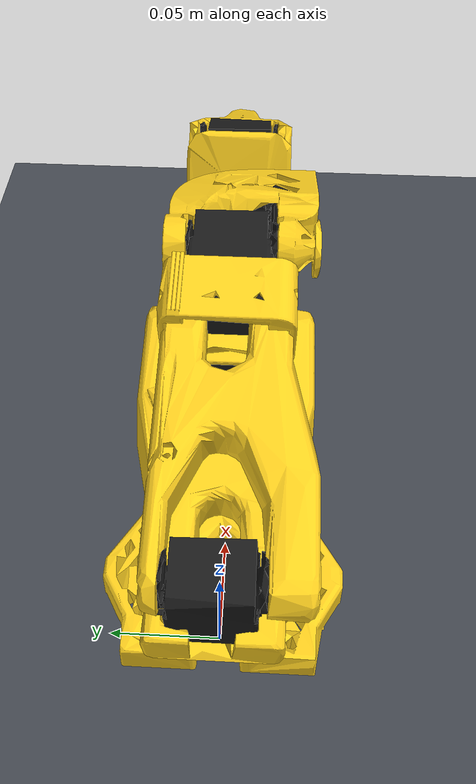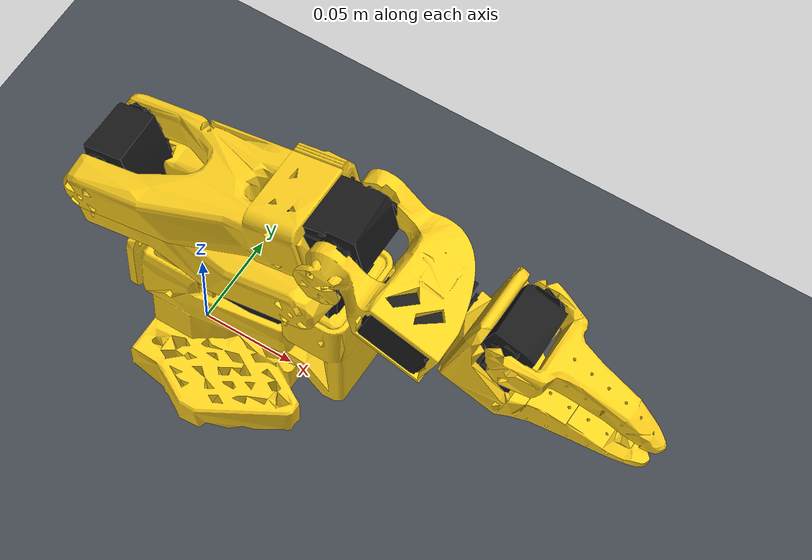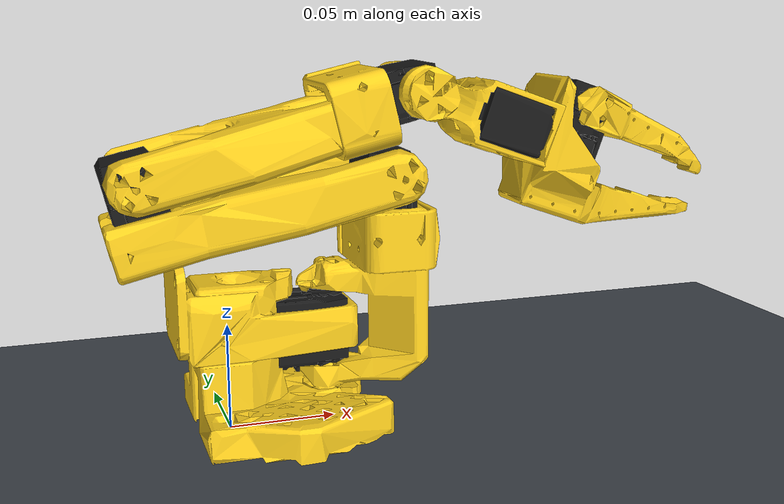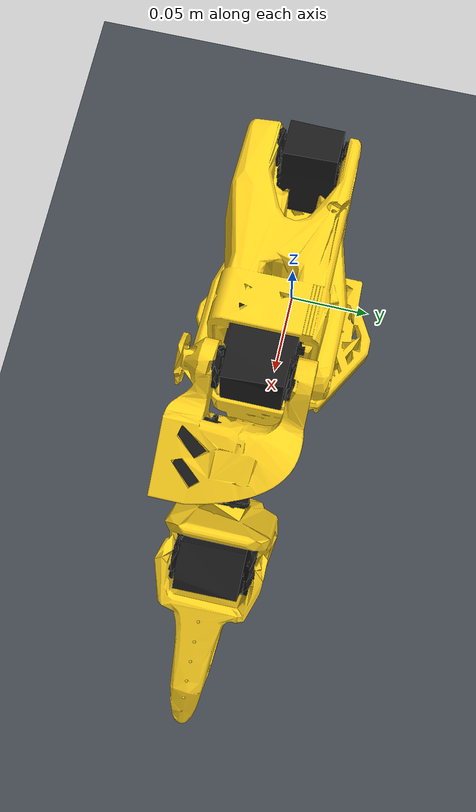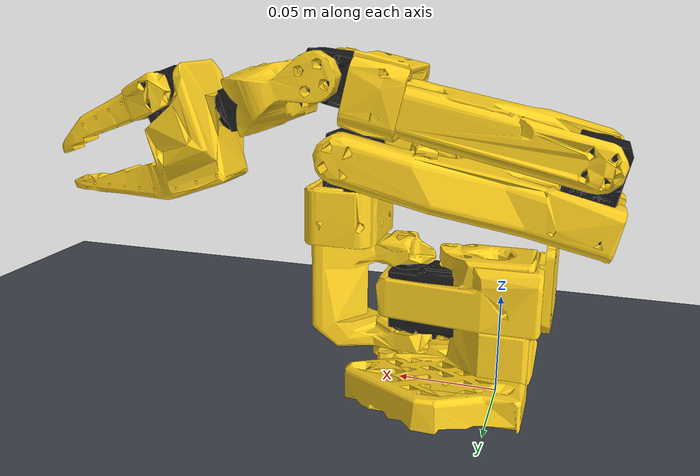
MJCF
<?xml version='1.0' encoding='utf-8'?>
<mujoco model="so100_snake">
  <compiler angle="radian" meshdir="../urdf/so100" />
  <asset>
    <mesh name="Base" content_type="model/stl" file="assets/Base.stl" />
    <mesh name="Base_Motor" content_type="model/stl" file="assets/Base_Motor.stl" />
    <mesh name="Rotation_Pitch" content_type="model/stl" file="assets/Rotation_Pitch.stl" />
    <mesh name="Rotation_Pitch_Motor" content_type="model/stl" file="assets/Rotation_Pitch_Motor.stl" />
    <mesh name="Upper_Arm" content_type="model/stl" file="assets/Upper_Arm.stl" />
    <mesh name="Upper_Arm_Motor" content_type="model/stl" file="assets/Upper_Arm_Motor.stl" />
    <mesh name="Lower_Arm" content_type="model/stl" file="assets/Lower_Arm.stl" />
    <mesh name="Lower_Arm_Motor" content_type="model/stl" file="assets/Lower_Arm_Motor.stl" />
    <mesh name="Wrist_Pitch_Roll" content_type="model/stl" file="assets/Wrist_Pitch_Roll.stl" />
    <mesh name="Wrist_Pitch_Roll_Motor" content_type="model/stl" file="assets/Wrist_Pitch_Roll_Motor.stl" />
    <mesh name="Fixed_Jaw" content_type="model/stl" file="assets/Fixed_Jaw.stl" />
    <mesh name="Fixed_Jaw_Motor" content_type="model/stl" file="assets/Fixed_Jaw_Motor.stl" />
    <mesh name="Moving_Jaw" content_type="model/stl" file="assets/Moving_Jaw.stl" />
    <texture name="grid" type="2d" builtin="checker" rgb1="0.24 0.26 0.29" rgb2="0.28 0.30 0.33" width="300" height="300" />
    <material name="table" texture="grid" texrepeat="8 8" reflectance="0.05" />
    <texture name="sky" type="skybox" builtin="gradient" rgb1="0.16 0.18 0.22" rgb2="0.04 0.05 0.07" width="256" height="256" />
  </asset>
  <worldbody>
    <body name="base" quat="0.707106781 0 0 0.707106781">
      <inertial pos="0 0 0" mass="1" diaginertia="0.01 0.01 0.01" />
      <geom type="mesh" contype="0" conaffinity="0" group="1" density="0" rgba="1 0.82 0.12 1" mesh="Base" />
      <geom type="mesh" contype="0" conaffinity="0" group="1" density="0" rgba="0.1 0.1 0.1 1" mesh="Base_Motor" />
      <geom type="mesh" rgba="0.1 0.1 0.1 1" mesh="Base" />
      <body name="shoulder" pos="0 -0.0452 0.0165" quat="0.707109 0.707105 0 0">
        <inertial pos="-9.07886e-05 0.0590972 0.031089" mass="0.119226" diaginertia="5.94278e-05 5.89975e-05 3.13712e-05" />
        <joint name="shoulder_pan" pos="0 0 0" axis="0 1 0" range="-2 2" actuatorfrcrange="-35 35" />
        <geom type="mesh" contype="0" conaffinity="0" group="1" density="0" rgba="1 0.82 0.12 1" mesh="Rotation_Pitch" />
        <geom type="mesh" contype="0" conaffinity="0" group="1" density="0" rgba="0.1 0.1 0.1 1" mesh="Rotation_Pitch_Motor" />
        <geom type="mesh" rgba="0.1 0.1 0.1 1" mesh="Rotation_Pitch" />
        <body name="upper_arm" pos="0 0.1025 0.0306" quat="0.62161 -0.783327 0 0">
          <inertial pos="-1.72052e-05 0.0701802 0.00310545" mass="0.162409" diaginertia="0.000213312 0.000167164 7.01522e-05" />
          <joint name="shoulder_lift" pos="0 0 0" axis="1 0 0" range="0 3.5" actuatorfrcrange="-35 35" />
          <geom type="mesh" contype="0" conaffinity="0" group="1" density="0" rgba="1 0.82 0.12 1" mesh="Upper_Arm" />
          <geom type="mesh" contype="0" conaffinity="0" group="1" density="0" rgba="0.1 0.1 0.1 1" mesh="Upper_Arm_Motor" />
          <geom type="mesh" rgba="0.1 0.1 0.1 1" mesh="Upper_Arm" />
          <body name="lower_arm" pos="0 0.11257 0.028" quat="0.707109 0.707105 0 0">
            <inertial pos="-0.00339604 0.00137796 0.0768007" mass="0.147968" diaginertia="0.000138803 0.000107748 4.84242e-05" />
            <joint name="elbow_flex" pos="0 0 0" axis="1 0 0" range="-3.14158 0" actuatorfrcrange="-35 35" />
            <geom type="mesh" contype="0" conaffinity="0" group="1" density="0" rgba="1 0.82 0.12 1" mesh="Lower_Arm" />
            <geom type="mesh" contype="0" conaffinity="0" group="1" density="0" rgba="0.1 0.1 0.1 1" mesh="Lower_Arm_Motor" />
            <geom type="mesh" rgba="0.1 0.1 0.1 1" mesh="Lower_Arm" />
            <body name="wrist" pos="0 0.0052 0.1349" quat="0.877583 -0.479426 0 0">
              <inertial pos="-0.00852653 -0.0352279 -2.34622e-05" mass="0.0661321" diaginertia="3.45403e-05 2.39041e-05 1.94704e-05" />
              <joint name="wrist_flex" pos="0 0 0" axis="1 0 0" range="-2.5 1.2" actuatorfrcrange="-35 35" />
              <geom type="mesh" contype="0" conaffinity="0" group="1" density="0" rgba="1 0.82 0.12 1" mesh="Wrist_Pitch_Roll" />
              <geom type="mesh" contype="0" conaffinity="0" group="1" density="0" rgba="0.1 0.1 0.1 1" mesh="Wrist_Pitch_Roll_Motor" />
              <geom type="mesh" rgba="0.1 0.1 0.1 1" mesh="Wrist_Pitch_Roll" />
              <body name="gripper" pos="0 -0.0601 0" quat="0.707109 0 0.707105 0">
                <inertial pos="0.00552377 -0.0280167 0.000483583" mass="0.0929859" diaginertia="5.03136e-05 4.64098e-05 2.72961e-05" />
                <joint name="wrist_roll" pos="0 0 0" axis="0 1 0" range="-3.14158 3.14158" actuatorfrcrange="-35 35" />
                <geom type="mesh" contype="0" conaffinity="0" group="1" density="0" rgba="1 0.82 0.12 1" mesh="Fixed_Jaw" />
                <geom type="mesh" contype="0" conaffinity="0" group="1" density="0" rgba="0.1 0.1 0.1 1" mesh="Fixed_Jaw_Motor" />
                <body name="jaw" pos="-0.0202 -0.0244 0" quat="6.32679e-06 0 1 0">
                  <inertial pos="-0.00161745 -0.0303473 0.000449646" mass="0.0202444" diaginertia="1.11265e-05 8.99651e-06 2.99548e-06" />
                  <joint name="gripper" pos="0 0 0" axis="0 0 1" range="-0.2 2" actuatorfrcrange="-35 35" />
                  <geom type="mesh" contype="0" conaffinity="0" group="1" density="0" rgba="1 0.82 0.12 1" mesh="Moving_Jaw" />
                </body>
                <body name="gripper_frame_link" pos="0.0079 -0.099127 -0.000218" quat="0.707105 0.707108 0 0">
                  <inertial pos="0 0 0" mass="1e-09" diaginertia="0 0 0" />
                </body>
                <site name="tcp" pos="0.0079 -0.099127 -0.000218" quat="0.707105483 0.70710808 0 0" size="0.004" rgba="1 0.2 0.2 1" group="3" />
                <site name="tool" pos="0.0079 -0.099127 -0.000218" quat="4.47371957e-06 -0.707106781 0.707106781 -4.47371957e-06" size="0.004" rgba="0.2 1 0.2 1" group="3" />
                <camera name="wrist" pos="0.0 0.03 0.035" xyaxes="-1 0 0 0 0 1" fovy="75.0" />
              </body>
            </body>
          </body>
        </body>
      </body>
    </body>
    <camera name="third_person" pos="0.62 -0.52 0.45" mode="targetbody" target="base" fovy="45.0" />
    <geom name="table" type="plane" size="1.5 1.5 0.01" material="table" contype="0" conaffinity="0" group="2" />
    <light name="key" pos="0.4 -0.6 1.2" dir="-0.2 0.4 -1" directional="true" diffuse="0.7 0.7 0.7" />
    <light name="fill" pos="-0.4 0.6 0.9" dir="0.3 -0.4 -1" directional="true" diffuse="0.25 0.25 0.28" />
  </worldbody>
  <visual>
    <global offwidth="1280" offheight="960" />
  </visual>
  <contact>
    <exclude body1="base" body2="shoulder" />
    <exclude body1="shoulder" body2="upper_arm" />
    <exclude body1="upper_arm" body2="lower_arm" />
    <exclude body1="lower_arm" body2="wrist" />
    <exclude body1="wrist" body2="gripper" />
  </contact>
  <keyframe>
    <key name="home" qpos="0 1.22173048 -1.22173048 0.523598776 0 0.899979029" />
  </keyframe>
</mujoco>
